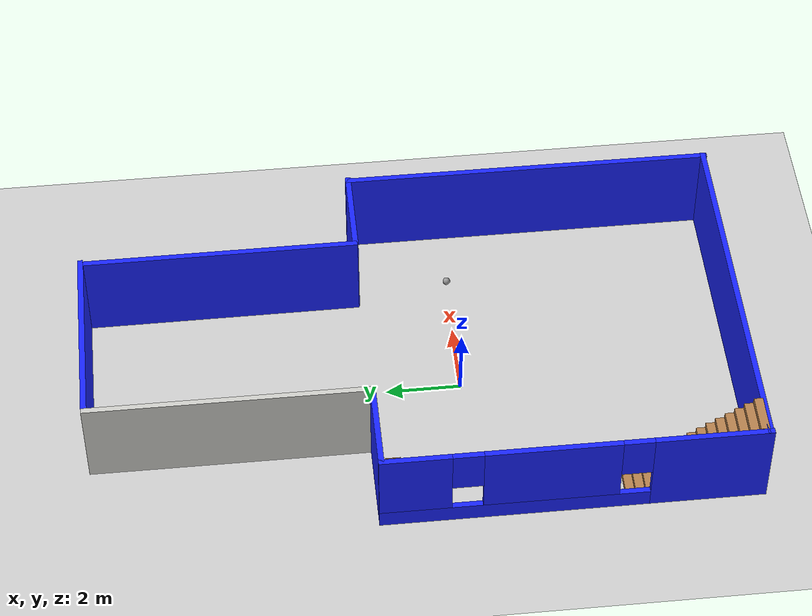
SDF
<sdf version="1.6">
 <world name="default">
  <light name="sun" type="directional">
   <pose>0 0 10 0 -0 0</pose>
   <diffuse>0.8 0.8 0.8 1</diffuse>
   <specular>0.1 0.1 0.1 1</specular>
   <attenuation>
    <range>1000</range>
    <constant>0.9</constant>
    <linear>0.01</linear>
    <quadratic>0.001</quadratic>
   </attenuation>
   <direction>-0.5 0.5 -1</direction>
  </light>
  <model name="ground_plane">
   <static>1</static>
   <link name="link">
    <collision name="collision">
     <geometry><plane><normal>0 0 1</normal><size>100 100</size></plane></geometry>
     <surface><friction><ode><mu>100</mu><mu2>50</mu2></ode></friction></surface>
    </collision>
    <visual name="visual">
     <cast_shadows>0</cast_shadows>
     <geometry><plane><normal>0 0 1</normal><size>100 100</size></plane></geometry>
     <material>
      <script><uri>file://media/materials/scripts/gazebo.material</uri><name>Gazebo/Grey</name></script>
     </material>
    </visual>
   </link>
  </model>
  <gravity>0 0 -9.8</gravity>
  <magnetic_field>6e-06 2.3e-05 -4.2e-05</magnetic_field>
  <atmosphere type="adiabatic"/>
  <physics name="default_physics" default="0" type="ode">
   <max_step_size>0.001</max_step_size>
   <real_time_factor>1</real_time_factor>
   <real_time_update_rate>1000</real_time_update_rate>
  </physics>
  <scene><ambient>0.4 0.4 0.4 1</ambient><background>0.7 0.7 0.7 1</background><shadows>1</shadows></scene>
  <spherical_coordinates>
   <surface_model>EARTH_WGS84</surface_model>
   <latitude_deg>0</latitude_deg>
   <longitude_deg>0</longitude_deg>
   <elevation>0</elevation>
   <heading_deg>0</heading_deg>
  </spherical_coordinates>
  <model name="mySecondHouse_0">
   <link name="Stairs_0">
    <pose>-1.20208 -6.23735 0 0 -0 0</pose>
    <visual name="Stairs_0_Visual_0">
     <pose>-3.16225 4.7318 0.083333 0 -0 0</pose>
     <geometry><box><size>1 0.233333 0.166667</size></box></geometry>
     <material>
      <script><uri>file://media/materials/scripts/gazebo.material</uri><name>Gazebo/Wood</name></script>
      <ambient>1 1 1 1</ambient>
      <diffuse>1 1 1 1</diffuse>
      <specular>0.2 0.2 0.2 1</specular>
      <emissive>0 0 0 1</emissive>
     </material>
    </visual>
    <visual name="Stairs_0_Visual_1">
     <pose>-3.16225 4.49846 0.25 0 -0 0</pose>
     <geometry><box><size>1 0.233333 0.166667</size></box></geometry>
     <material>
      <script><uri>file://media/materials/scripts/gazebo.material</uri><name>Gazebo/Wood</name></script>
      <ambient>1 1 1 1</ambient>
      <diffuse>1 1 1 1</diffuse>
      <specular>0.2 0.2 0.2 1</specular>
      <emissive>0 0 0 1</emissive>
     </material>
    </visual>
    <visual name="Stairs_0_Visual_2">
     <pose>-3.16225 4.26513 0.416667 0 -0 0</pose>
     <geometry><box><size>1 0.233333 0.166667</size></box></geometry>
     <material>
      <script><uri>file://media/materials/scripts/gazebo.material</uri><name>Gazebo/Wood</name></script>
      <ambient>1 1 1 1</ambient>
      <diffuse>1 1 1 1</diffuse>
      <specular>0.2 0.2 0.2 1</specular>
      <emissive>0 0 0 1</emissive>
     </material>
    </visual>
    <visual name="Stairs_0_Visual_3">
     <pose>-3.16225 4.0318 0.583333 0 -0 0</pose>
     <geometry><box><size>1 0.233333 0.166667</size></box></geometry>
     <material>
      <script><uri>file://media/materials/scripts/gazebo.material</uri><name>Gazebo/Wood</name></script>
      <ambient>1 1 1 1</ambient>
      <diffuse>1 1 1 1</diffuse>
      <specular>0.2 0.2 0.2 1</specular>
      <emissive>0 0 0 1</emissive>
     </material>
    </visual>
    <visual name="Stairs_0_Visual_4">
     <pose>-3.16225 3.79846 0.75 0 -0 0</pose>
     <geometry><box><size>1 0.233333 0.166667</size></box></geometry>
     <material>
      <script><uri>file://media/materials/scripts/gazebo.material</uri><name>Gazebo/Wood</name></script>
      <ambient>1 1 1 1</ambient>
      <diffuse>1 1 1 1</diffuse>
      <specular>0.2 0.2 0.2 1</specular>
      <emissive>0 0 0 1</emissive>
     </material>
    </visual>
    <visual name="Stairs_0_Visual_5">
     <pose>-3.16225 3.56513 0.916667 0 -0 0</pose>
     <geometry><box><size>1 0.233333 0.166667</size></box></geometry>
     <material>
      <script><uri>file://media/materials/scripts/gazebo.material</uri><name>Gazebo/Wood</name></script>
      <ambient>1 1 1 1</ambient>
      <diffuse>1 1 1 1</diffuse>
      <specular>0.2 0.2 0.2 1</specular>
      <emissive>0 0 0 1</emissive>
     </material>
    </visual>
    <visual name="Stairs_0_Visual_6">
     <pose>-3.16225 3.3318 1.08333 0 -0 0</pose>
     <geometry><box><size>1 0.233333 0.166667</size></box></geometry>
     <material>
      <script><uri>file://media/materials/scripts/gazebo.material</uri><name>Gazebo/Wood</name></script>
      <ambient>1 1 1 1</ambient>
      <diffuse>1 1 1 1</diffuse>
      <specular>0.2 0.2 0.2 1</specular>
      <emissive>0 0 0 1</emissive>
     </material>
    </visual>
    <visual name="Stairs_0_Visual_7">
     <pose>-3.16225 3.09846 1.25 0 -0 0</pose>
     <geometry><box><size>1 0.233333 0.166667</size></box></geometry>
     <material>
      <script><uri>file://media/materials/scripts/gazebo.material</uri><name>Gazebo/Wood</name></script>
      <ambient>1 1 1 1</ambient>
      <diffuse>1 1 1 1</diffuse>
      <specular>0.2 0.2 0.2 1</specular>
      <emissive>0 0 0 1</emissive>
     </material>
    </visual>
    <visual name="Stairs_0_Visual_8">
     <pose>-3.16225 2.86513 1.41667 0 -0 0</pose>
     <geometry><box><size>1 0.233333 0.166667</size></box></geometry>
     <material>
      <script><uri>file://media/materials/scripts/gazebo.material</uri><name>Gazebo/Wood</name></script>
      <ambient>1 1 1 1</ambient>
      <diffuse>1 1 1 1</diffuse>
      <specular>0.2 0.2 0.2 1</specular>
      <emissive>0 0 0 1</emissive>
     </material>
    </visual>
    <visual name="Stairs_0_Visual_9">
     <pose>-3.16225 2.6318 1.58333 0 -0 0</pose>
     <geometry><box><size>1 0.233333 0.166667</size></box></geometry>
     <material>
      <script><uri>file://media/materials/scripts/gazebo.material</uri><name>Gazebo/Wood</name></script>
      <ambient>1 1 1 1</ambient>
      <diffuse>1 1 1 1</diffuse>
      <specular>0.2 0.2 0.2 1</specular>
      <emissive>0 0 0 1</emissive>
     </material>
    </visual>
    <visual name="Stairs_0_Visual_10">
     <pose>-3.16225 2.39846 1.75 0 -0 0</pose>
     <geometry><box><size>1 0.233333 0.166667</size></box></geometry>
     <material>
      <script><uri>file://media/materials/scripts/gazebo.material</uri><name>Gazebo/Wood</name></script>
      <ambient>1 1 1 1</ambient>
      <diffuse>1 1 1 1</diffuse>
      <specular>0.2 0.2 0.2 1</specular>
      <emissive>0 0 0 1</emissive>
     </material>
    </visual>
    <visual name="Stairs_0_Visual_11">
     <pose>-3.16225 2.16513 1.91667 0 -0 0</pose>
     <geometry><box><size>1 0.233333 0.166667</size></box></geometry>
     <material>
      <script><uri>file://media/materials/scripts/gazebo.material</uri><name>Gazebo/Wood</name></script>
      <ambient>1 1 1 1</ambient>
      <diffuse>1 1 1 1</diffuse>
      <specular>0.2 0.2 0.2 1</specular>
      <emissive>0 0 0 1</emissive>
     </material>
    </visual>
    <visual name="Stairs_0_Visual_12">
     <pose>-3.16225 1.9318 2.08333 0 -0 0</pose>
     <geometry><box><size>1 0.233333 0.166667</size></box></geometry>
     <material>
      <script><uri>file://media/materials/scripts/gazebo.material</uri><name>Gazebo/Wood</name></script>
      <ambient>1 1 1 1</ambient>
      <diffuse>1 1 1 1</diffuse>
      <specular>0.2 0.2 0.2 1</specular>
      <emissive>0 0 0 1</emissive>
     </material>
    </visual>
    <visual name="Stairs_0_Visual_13">
     <pose>-3.16225 1.69846 2.25 0 -0 0</pose>
     <geometry><box><size>1 0.233333 0.166667</size></box></geometry>
     <material>
      <script><uri>file://media/materials/scripts/gazebo.material</uri><name>Gazebo/Wood</name></script>
      <ambient>1 1 1 1</ambient>
      <diffuse>1 1 1 1</diffuse>
      <specular>0.2 0.2 0.2 1</specular>
      <emissive>0 0 0 1</emissive>
     </material>
    </visual>
    <visual name="Stairs_0_Visual_14">
     <pose>-3.16225 1.46513 2.41667 0 -0 0</pose>
     <geometry><box><size>1 0.233333 0.166667</size></box></geometry>
     <material>
      <script><uri>file://media/materials/scripts/gazebo.material</uri><name>Gazebo/Wood</name></script>
      <ambient>1 1 1 1</ambient>
      <diffuse>1 1 1 1</diffuse>
      <specular>0.2 0.2 0.2 1</specular>
      <emissive>0 0 0 1</emissive>
     </material>
    </visual>
    <collision name="Stairs_0_Collision_14">
     <pose>-3.16225 1.46513 2.41667 0 -0 0</pose>
     <geometry><box><size>1 0.233333 0.166667</size></box></geometry>
     <surface>
      <friction>
       <ode><mu>1</mu><mu2>1</mu2><fdir1>0 0 0</fdir1><slip1>0</slip1><slip2>0</slip2></ode>
       <torsional>
        <coefficient>1</coefficient>
        <patch_radius>0</patch_radius>
        <surface_radius>0</surface_radius>
        <use_patch_radius>1</use_patch_radius>
        <ode><slip>0</slip></ode>
       </torsional>
      </friction>
      <bounce><restitution_coefficient>0</restitution_coefficient><threshold>1e+06</threshold></bounce>
      <contact>
       <collide_without_contact>0</collide_without_contact>
       <collide_without_contact_bitmask>1</collide_without_contact_bitmask>
       <collide_bitmask>1</collide_bitmask>
       <ode>
        <soft_cfm>0</soft_cfm>
        <soft_erp>0.2</soft_erp>
        <kp>1e+13</kp>
        <kd>1</kd>
        <max_vel>0.01</max_vel>
        <min_depth>0</min_depth>
       </ode>
       <bullet>
        <split_impulse>1</split_impulse>
        <split_impulse_penetration_threshold>-0.01</split_impulse_penetration_threshold>
        <soft_cfm>0</soft_cfm>
        <soft_erp>0.2</soft_erp>
        <kp>1e+13</kp>
        <kd>1</kd>
       </bullet>
      </contact>
     </surface>
    </collision>
    <collision name="Stairs_0_Collision_0">
     <pose>-3.16225 4.7318 0.083333 0 -0 0</pose>
     <geometry><box><size>1 0.233333 0.166667</size></box></geometry>
     <surface>
      <friction>
       <ode><mu>1</mu><mu2>1</mu2><fdir1>0 0 0</fdir1><slip1>0</slip1><slip2>0</slip2></ode>
       <torsional>
        <coefficient>1</coefficient>
        <patch_radius>0</patch_radius>
        <surface_radius>0</surface_radius>
        <use_patch_radius>1</use_patch_radius>
        <ode><slip>0</slip></ode>
       </torsional>
      </friction>
      <bounce><restitution_coefficient>0</restitution_coefficient><threshold>1e+06</threshold></bounce>
      <contact>
       <collide_without_contact>0</collide_without_contact>
       <collide_without_contact_bitmask>1</collide_without_contact_bitmask>
       <collide_bitmask>1</collide_bitmask>
       <ode>
        <soft_cfm>0</soft_cfm>
        <soft_erp>0.2</soft_erp>
        <kp>1e+13</kp>
        <kd>1</kd>
        <max_vel>0.01</max_vel>
        <min_depth>0</min_depth>
       </ode>
       <bullet>
        <split_impulse>1</split_impulse>
        <split_impulse_penetration_threshold>-0.01</split_impulse_penetration_threshold>
        <soft_cfm>0</soft_cfm>
        <soft_erp>0.2</soft_erp>
        <kp>1e+13</kp>
        <kd>1</kd>
       </bullet>
      </contact>
     </surface>
    </collision>
    <collision name="Stairs_0_Collision_1">
     <pose>-3.16225 4.49846 0.25 0 -0 0</pose>
     <geometry><box><size>1 0.233333 0.166667</size></box></geometry>
     <surface>
      <friction>
       <ode><mu>1</mu><mu2>1</mu2><fdir1>0 0 0</fdir1><slip1>0</slip1><slip2>0</slip2></ode>
       <torsional>
        <coefficient>1</coefficient>
        <patch_radius>0</patch_radius>
        <surface_radius>0</surface_radius>
        <use_patch_radius>1</use_patch_radius>
        <ode><slip>0</slip></ode>
       </torsional>
      </friction>
      <bounce><restitution_coefficient>0</restitution_coefficient><threshold>1e+06</threshold></bounce>
      <contact>
       <collide_without_contact>0</collide_without_contact>
       <collide_without_contact_bitmask>1</collide_without_contact_bitmask>
       <collide_bitmask>1</collide_bitmask>
       <ode>
        <soft_cfm>0</soft_cfm>
        <soft_erp>0.2</soft_erp>
        <kp>1e+13</kp>
        <kd>1</kd>
        <max_vel>0.01</max_vel>
        <min_depth>0</min_depth>
       </ode>
       <bullet>
        <split_impulse>1</split_impulse>
        <split_impulse_penetration_threshold>-0.01</split_impulse_penetration_threshold>
        <soft_cfm>0</soft_cfm>
        <soft_erp>0.2</soft_erp>
        <kp>1e+13</kp>
        <kd>1</kd>
       </bullet>
      </contact>
     </surface>
    </collision>
    <collision name="Stairs_0_Collision_2">
     <pose>-3.16225 4.26513 0.416667 0 -0 0</pose>
     <geometry><box><size>1 0.233333 0.166667</size></box></geometry>
     <surface>
      <friction>
       <ode><mu>1</mu><mu2>1</mu2><fdir1>0 0 0</fdir1><slip1>0</slip1><slip2>0</slip2></ode>
       <torsional>
        <coefficient>1</coefficient>
        <patch_radius>0</patch_radius>
        <surface_radius>0</surface_radius>
        <use_patch_radius>1</use_patch_radius>
        <ode><slip>0</slip></ode>
       </torsional>
      </friction>
      <bounce><restitution_coefficient>0</restitution_coefficient><threshold>1e+06</threshold></bounce>
      <contact>
       <collide_without_contact>0</collide_without_contact>
       <collide_without_contact_bitmask>1</collide_without_contact_bitmask>
       <collide_bitmask>1</collide_bitmask>
       <ode>
        <soft_cfm>0</soft_cfm>
        <soft_erp>0.2</soft_erp>
        <kp>1e+13</kp>
        <kd>1</kd>
        <max_vel>0.01</max_vel>
        <min_depth>0</min_depth>
       </ode>
       <bullet>
        <split_impulse>1</split_impulse>
        <split_impulse_penetration_threshold>-0.01</split_impulse_penetration_threshold>
        <soft_cfm>0</soft_cfm>
        <soft_erp>0.2</soft_erp>
        <kp>1e+13</kp>
        <kd>1</kd>
       </bullet>
      </contact>
     </surface>
    </collision>
    <collision name="Stairs_0_Collision_3">
     <pose>-3.16225 4.0318 0.583333 0 -0 0</pose>
     <geometry><box><size>1 0.233333 0.166667</size></box></geometry>
     <surface>
      <friction>
       <ode><mu>1</mu><mu2>1</mu2><fdir1>0 0 0</fdir1><slip1>0</slip1><slip2>0</slip2></ode>
       <torsional>
        <coefficient>1</coefficient>
        <patch_radius>0</patch_radius>
        <surface_radius>0</surface_radius>
        <use_patch_radius>1</use_patch_radius>
        <ode><slip>0</slip></ode>
       </torsional>
      </friction>
      <bounce><restitution_coefficient>0</restitution_coefficient><threshold>1e+06</threshold></bounce>
      <contact>
       <collide_without_contact>0</collide_without_contact>
       <collide_without_contact_bitmask>1</collide_without_contact_bitmask>
       <collide_bitmask>1</collide_bitmask>
       <ode>
        <soft_cfm>0</soft_cfm>
        <soft_erp>0.2</soft_erp>
        <kp>1e+13</kp>
        <kd>1</kd>
        <max_vel>0.01</max_vel>
        <min_depth>0</min_depth>
       </ode>
       <bullet>
        <split_impulse>1</split_impulse>
        <split_impulse_penetration_threshold>-0.01</split_impulse_penetration_threshold>
        <soft_cfm>0</soft_cfm>
        <soft_erp>0.2</soft_erp>
        <kp>1e+13</kp>
        <kd>1</kd>
       </bullet>
      </contact>
     </surface>
    </collision>
    <collision name="Stairs_0_Collision_5">
     <pose>-3.16225 3.56513 0.916667 0 -0 0</pose>
     <geometry><box><size>1 0.233333 0.166667</size></box></geometry>
     <surface>
      <friction>
       <ode><mu>1</mu><mu2>1</mu2><fdir1>0 0 0</fdir1><slip1>0</slip1><slip2>0</slip2></ode>
       <torsional>
        <coefficient>1</coefficient>
        <patch_radius>0</patch_radius>
        <surface_radius>0</surface_radius>
        <use_patch_radius>1</use_patch_radius>
        <ode><slip>0</slip></ode>
       </torsional>
      </friction>
      <bounce><restitution_coefficient>0</restitution_coefficient><threshold>1e+06</threshold></bounce>
      <contact>
       <collide_without_contact>0</collide_without_contact>
       <collide_without_contact_bitmask>1</collide_without_contact_bitmask>
       <collide_bitmask>1</collide_bitmask>
       <ode>
        <soft_cfm>0</soft_cfm>
        <soft_erp>0.2</soft_erp>
        <kp>1e+13</kp>
        <kd>1</kd>
        <max_vel>0.01</max_vel>
        <min_depth>0</min_depth>
       </ode>
       <bullet>
        <split_impulse>1</split_impulse>
        <split_impulse_penetration_threshold>-0.01</split_impulse_penetration_threshold>
        <soft_cfm>0</soft_cfm>
        <soft_erp>0.2</soft_erp>
        <kp>1e+13</kp>
        <kd>1</kd>
       </bullet>
      </contact>
     </surface>
    </collision>
    <collision name="Stairs_0_Collision_6">
     <pose>-3.16225 3.3318 1.08333 0 -0 0</pose>
     <geometry><box><size>1 0.233333 0.166667</size></box></geometry>
     <surface>
      <friction>
       <ode><mu>1</mu><mu2>1</mu2><fdir1>0 0 0</fdir1><slip1>0</slip1><slip2>0</slip2></ode>
       <torsional>
        <coefficient>1</coefficient>
        <patch_radius>0</patch_radius>
        <surface_radius>0</surface_radius>
        <use_patch_radius>1</use_patch_radius>
        <ode><slip>0</slip></ode>
       </torsional>
      </friction>
      <bounce><restitution_coefficient>0</restitution_coefficient><threshold>1e+06</threshold></bounce>
      <contact>
       <collide_without_contact>0</collide_without_contact>
       <collide_without_contact_bitmask>1</collide_without_contact_bitmask>
       <collide_bitmask>1</collide_bitmask>
       <ode>
        <soft_cfm>0</soft_cfm>
        <soft_erp>0.2</soft_erp>
        <kp>1e+13</kp>
        <kd>1</kd>
        <max_vel>0.01</max_vel>
        <min_depth>0</min_depth>
       </ode>
       <bullet>
        <split_impulse>1</split_impulse>
        <split_impulse_penetration_threshold>-0.01</split_impulse_penetration_threshold>
        <soft_cfm>0</soft_cfm>
        <soft_erp>0.2</soft_erp>
        <kp>1e+13</kp>
        <kd>1</kd>
       </bullet>
      </contact>
     </surface>
    </collision>
    <collision name="Stairs_0_Collision_4">
     <pose>-3.16225 3.79846 0.75 0 -0 0</pose>
     <geometry><box><size>1 0.233333 0.166667</size></box></geometry>
     <surface>
      <friction>
       <ode><mu>1</mu><mu2>1</mu2><fdir1>0 0 0</fdir1><slip1>0</slip1><slip2>0</slip2></ode>
       <torsional>
        <coefficient>1</coefficient>
        <patch_radius>0</patch_radius>
        <surface_radius>0</surface_radius>
        <use_patch_radius>1</use_patch_radius>
        <ode><slip>0</slip></ode>
       </torsional>
      </friction>
      <bounce><restitution_coefficient>0</restitution_coefficient><threshold>1e+06</threshold></bounce>
      <contact>
       <collide_without_contact>0</collide_without_contact>
       <collide_without_contact_bitmask>1</collide_without_contact_bitmask>
       <collide_bitmask>1</collide_bitmask>
       <ode>
        <soft_cfm>0</soft_cfm>
        <soft_erp>0.2</soft_erp>
        <kp>1e+13</kp>
        <kd>1</kd>
        <max_vel>0.01</max_vel>
        <min_depth>0</min_depth>
       </ode>
       <bullet>
        <split_impulse>1</split_impulse>
        <split_impulse_penetration_threshold>-0.01</split_impulse_penetration_threshold>
        <soft_cfm>0</soft_cfm>
        <soft_erp>0.2</soft_erp>
        <kp>1e+13</kp>
        <kd>1</kd>
       </bullet>
      </contact>
     </surface>
    </collision>
    <collision name="Stairs_0_Collision_9">
     <pose>-3.16225 2.6318 1.58333 0 -0 0</pose>
     <geometry><box><size>1 0.233333 0.166667</size></box></geometry>
     <surface>
      <friction>
       <ode><mu>1</mu><mu2>1</mu2><fdir1>0 0 0</fdir1><slip1>0</slip1><slip2>0</slip2></ode>
       <torsional>
        <coefficient>1</coefficient>
        <patch_radius>0</patch_radius>
        <surface_radius>0</surface_radius>
        <use_patch_radius>1</use_patch_radius>
        <ode><slip>0</slip></ode>
       </torsional>
      </friction>
      <bounce><restitution_coefficient>0</restitution_coefficient><threshold>1e+06</threshold></bounce>
      <contact>
       <collide_without_contact>0</collide_without_contact>
       <collide_without_contact_bitmask>1</collide_without_contact_bitmask>
       <collide_bitmask>1</collide_bitmask>
       <ode>
        <soft_cfm>0</soft_cfm>
        <soft_erp>0.2</soft_erp>
        <kp>1e+13</kp>
        <kd>1</kd>
        <max_vel>0.01</max_vel>
        <min_depth>0</min_depth>
       </ode>
       <bullet>
        <split_impulse>1</split_impulse>
        <split_impulse_penetration_threshold>-0.01</split_impulse_penetration_threshold>
        <soft_cfm>0</soft_cfm>
        <soft_erp>0.2</soft_erp>
        <kp>1e+13</kp>
        <kd>1</kd>
       </bullet>
      </contact>
     </surface>
    </collision>
    <collision name="Stairs_0_Collision_7">
     <pose>-3.16225 3.09846 1.25 0 -0 0</pose>
     <geometry><box><size>1 0.233333 0.166667</size></box></geometry>
     <surface>
      <friction>
       <ode><mu>1</mu><mu2>1</mu2><fdir1>0 0 0</fdir1><slip1>0</slip1><slip2>0</slip2></ode>
       <torsional>
        <coefficient>1</coefficient>
        <patch_radius>0</patch_radius>
        <surface_radius>0</surface_radius>
        <use_patch_radius>1</use_patch_radius>
        <ode><slip>0</slip></ode>
       </torsional>
      </friction>
      <bounce><restitution_coefficient>0</restitution_coefficient><threshold>1e+06</threshold></bounce>
      <contact>
       <collide_without_contact>0</collide_without_contact>
       <collide_without_contact_bitmask>1</collide_without_contact_bitmask>
       <collide_bitmask>1</collide_bitmask>
       <ode>
        <soft_cfm>0</soft_cfm>
        <soft_erp>0.2</soft_erp>
        <kp>1e+13</kp>
        <kd>1</kd>
        <max_vel>0.01</max_vel>
        <min_depth>0</min_depth>
       </ode>
       <bullet>
        <split_impulse>1</split_impulse>
        <split_impulse_penetration_threshold>-0.01</split_impulse_penetration_threshold>
        <soft_cfm>0</soft_cfm>
        <soft_erp>0.2</soft_erp>
        <kp>1e+13</kp>
        <kd>1</kd>
       </bullet>
      </contact>
     </surface>
    </collision>
    <collision name="Stairs_0_Collision_8">
     <pose>-3.16225 2.86513 1.41667 0 -0 0</pose>
     <geometry><box><size>1 0.233333 0.166667</size></box></geometry>
     <surface>
      <friction>
       <ode><mu>1</mu><mu2>1</mu2><fdir1>0 0 0</fdir1><slip1>0</slip1><slip2>0</slip2></ode>
       <torsional>
        <coefficient>1</coefficient>
        <patch_radius>0</patch_radius>
        <surface_radius>0</surface_radius>
        <use_patch_radius>1</use_patch_radius>
        <ode><slip>0</slip></ode>
       </torsional>
      </friction>
      <bounce><restitution_coefficient>0</restitution_coefficient><threshold>1e+06</threshold></bounce>
      <contact>
       <collide_without_contact>0</collide_without_contact>
       <collide_without_contact_bitmask>1</collide_without_contact_bitmask>
       <collide_bitmask>1</collide_bitmask>
       <ode>
        <soft_cfm>0</soft_cfm>
        <soft_erp>0.2</soft_erp>
        <kp>1e+13</kp>
        <kd>1</kd>
        <max_vel>0.01</max_vel>
        <min_depth>0</min_depth>
       </ode>
       <bullet>
        <split_impulse>1</split_impulse>
        <split_impulse_penetration_threshold>-0.01</split_impulse_penetration_threshold>
        <soft_cfm>0</soft_cfm>
        <soft_erp>0.2</soft_erp>
        <kp>1e+13</kp>
        <kd>1</kd>
       </bullet>
      </contact>
     </surface>
    </collision>
    <collision name="Stairs_0_Collision_10">
     <pose>-3.16225 2.39846 1.75 0 -0 0</pose>
     <geometry><box><size>1 0.233333 0.166667</size></box></geometry>
     <surface>
      <friction>
       <ode><mu>1</mu><mu2>1</mu2><fdir1>0 0 0</fdir1><slip1>0</slip1><slip2>0</slip2></ode>
       <torsional>
        <coefficient>1</coefficient>
        <patch_radius>0</patch_radius>
        <surface_radius>0</surface_radius>
        <use_patch_radius>1</use_patch_radius>
        <ode><slip>0</slip></ode>
       </torsional>
      </friction>
      <bounce><restitution_coefficient>0</restitution_coefficient><threshold>1e+06</threshold></bounce>
      <contact>
       <collide_without_contact>0</collide_without_contact>
       <collide_without_contact_bitmask>1</collide_without_contact_bitmask>
       <collide_bitmask>1</collide_bitmask>
       <ode>
        <soft_cfm>0</soft_cfm>
        <soft_erp>0.2</soft_erp>
        <kp>1e+13</kp>
        <kd>1</kd>
        <max_vel>0.01</max_vel>
        <min_depth>0</min_depth>
       </ode>
       <bullet>
        <split_impulse>1</split_impulse>
        <split_impulse_penetration_threshold>-0.01</split_impulse_penetration_threshold>
        <soft_cfm>0</soft_cfm>
        <soft_erp>0.2</soft_erp>
        <kp>1e+13</kp>
        <kd>1</kd>
       </bullet>
      </contact>
     </surface>
    </collision>
    <collision name="Stairs_0_Collision_11">
     <pose>-3.16225 2.16513 1.91667 0 -0 0</pose>
     <geometry><box><size>1 0.233333 0.166667</size></box></geometry>
     <surface>
      <friction>
       <ode><mu>1</mu><mu2>1</mu2><fdir1>0 0 0</fdir1><slip1>0</slip1><slip2>0</slip2></ode>
       <torsional>
        <coefficient>1</coefficient>
        <patch_radius>0</patch_radius>
        <surface_radius>0</surface_radius>
        <use_patch_radius>1</use_patch_radius>
        <ode><slip>0</slip></ode>
       </torsional>
      </friction>
      <bounce><restitution_coefficient>0</restitution_coefficient><threshold>1e+06</threshold></bounce>
      <contact>
       <collide_without_contact>0</collide_without_contact>
       <collide_without_contact_bitmask>1</collide_without_contact_bitmask>
       <collide_bitmask>1</collide_bitmask>
       <ode>
        <soft_cfm>0</soft_cfm>
        <soft_erp>0.2</soft_erp>
        <kp>1e+13</kp>
        <kd>1</kd>
        <max_vel>0.01</max_vel>
        <min_depth>0</min_depth>
       </ode>
       <bullet>
        <split_impulse>1</split_impulse>
        <split_impulse_penetration_threshold>-0.01</split_impulse_penetration_threshold>
        <soft_cfm>0</soft_cfm>
        <soft_erp>0.2</soft_erp>
        <kp>1e+13</kp>
        <kd>1</kd>
       </bullet>
      </contact>
     </surface>
    </collision>
    <collision name="Stairs_0_Collision_12">
     <pose>-3.16225 1.9318 2.08333 0 -0 0</pose>
     <geometry><box><size>1 0.233333 0.166667</size></box></geometry>
     <surface>
      <friction>
       <ode><mu>1</mu><mu2>1</mu2><fdir1>0 0 0</fdir1><slip1>0</slip1><slip2>0</slip2></ode>
       <torsional>
        <coefficient>1</coefficient>
        <patch_radius>0</patch_radius>
        <surface_radius>0</surface_radius>
        <use_patch_radius>1</use_patch_radius>
        <ode><slip>0</slip></ode>
       </torsional>
      </friction>
      <bounce><restitution_coefficient>0</restitution_coefficient><threshold>1e+06</threshold></bounce>
      <contact>
       <collide_without_contact>0</collide_without_contact>
       <collide_without_contact_bitmask>1</collide_without_contact_bitmask>
       <collide_bitmask>1</collide_bitmask>
       <ode>
        <soft_cfm>0</soft_cfm>
        <soft_erp>0.2</soft_erp>
        <kp>1e+13</kp>
        <kd>1</kd>
        <max_vel>0.01</max_vel>
        <min_depth>0</min_depth>
       </ode>
       <bullet>
        <split_impulse>1</split_impulse>
        <split_impulse_penetration_threshold>-0.01</split_impulse_penetration_threshold>
        <soft_cfm>0</soft_cfm>
        <soft_erp>0.2</soft_erp>
        <kp>1e+13</kp>
        <kd>1</kd>
       </bullet>
      </contact>
     </surface>
    </collision>
    <collision name="Stairs_0_Collision_13">
     <pose>-3.16225 1.69846 2.25 0 -0 0</pose>
     <geometry><box><size>1 0.233333 0.166667</size></box></geometry>
     <surface>
      <friction>
       <ode><mu>1</mu><mu2>1</mu2><fdir1>0 0 0</fdir1><slip1>0</slip1><slip2>0</slip2></ode>
       <torsional>
        <coefficient>1</coefficient>
        <patch_radius>0</patch_radius>
        <surface_radius>0</surface_radius>
        <use_patch_radius>1</use_patch_radius>
        <ode><slip>0</slip></ode>
       </torsional>
      </friction>
      <bounce><restitution_coefficient>0</restitution_coefficient><threshold>1e+06</threshold></bounce>
      <contact>
       <collide_without_contact>0</collide_without_contact>
       <collide_without_contact_bitmask>1</collide_without_contact_bitmask>
       <collide_bitmask>1</collide_bitmask>
       <ode>
        <soft_cfm>0</soft_cfm>
        <soft_erp>0.2</soft_erp>
        <kp>1e+13</kp>
        <kd>1</kd>
        <max_vel>0.01</max_vel>
        <min_depth>0</min_depth>
       </ode>
       <bullet>
        <split_impulse>1</split_impulse>
        <split_impulse_penetration_threshold>-0.01</split_impulse_penetration_threshold>
        <soft_cfm>0</soft_cfm>
        <soft_erp>0.2</soft_erp>
        <kp>1e+13</kp>
        <kd>1</kd>
       </bullet>
      </contact>
     </surface>
    </collision>
   </link>
   <link name="Wall_26">
    <pose>-3.71974 4.925 0 0 -0 0</pose>
    <visual name="Wall_26_Visual">
     <pose>0 0 1.25 0 -0 0</pose>
     <geometry><box><size>2.5 0.15 2.5</size></box></geometry>
     <material>
      <script><uri>file://media/materials/scripts/gazebo.material</uri><name>Gazebo/Grey</name></script>
      <ambient>0.0980392 0.141176 1 1</ambient>
      <diffuse>0.7 0.7 0.7 1</diffuse>
      <specular>0.01 0.01 0.01 1</specular>
      <emissive>0 0 0 1</emissive>
     </material>
    </visual>
    <collision name="Wall_26_Collision">
     <pose>0 0 1.25 0 -0 0</pose>
     <geometry><box><size>2.5 0.15 2.5</size></box></geometry>
     <surface>
      <friction>
       <ode><mu>1</mu><mu2>1</mu2><fdir1>0 0 0</fdir1><slip1>0</slip1><slip2>0</slip2></ode>
       <torsional>
        <coefficient>1</coefficient>
        <patch_radius>0</patch_radius>
        <surface_radius>0</surface_radius>
        <use_patch_radius>1</use_patch_radius>
        <ode><slip>0</slip></ode>
       </torsional>
      </friction>
      <bounce><restitution_coefficient>0</restitution_coefficient><threshold>1e+06</threshold></bounce>
      <contact>
       <collide_without_contact>0</collide_without_contact>
       <collide_without_contact_bitmask>1</collide_without_contact_bitmask>
       <collide_bitmask>1</collide_bitmask>
       <ode>
        <soft_cfm>0</soft_cfm>
        <soft_erp>0.2</soft_erp>
        <kp>1e+13</kp>
        <kd>1</kd>
        <max_vel>0.01</max_vel>
        <min_depth>0</min_depth>
       </ode>
       <bullet>
        <split_impulse>1</split_impulse>
        <split_impulse_penetration_threshold>-0.01</split_impulse_penetration_threshold>
        <soft_cfm>0</soft_cfm>
        <soft_erp>0.2</soft_erp>
        <kp>1e+13</kp>
        <kd>1</kd>
       </bullet>
      </contact>
     </surface>
    </collision>
   </link>
   <link name="Wall_27">
    <pose>-2.54213 8.59143 0 0 0 -1.57151</pose>
    <inertial>
     <inertia><ixx>nan</ixx><ixy>0</ixy><ixz>0</ixz><iyy>nan</iyy><iyz>0</iyz><izz>nan</izz></inertia>
     <mass>0</mass>
    </inertial>
    <visual name="Wall_27_Visual">
     <pose>0 0 1.25 0 -0 0</pose>
     <geometry><box><size>7.48003 0.15 2.5</size></box></geometry>
     <material>
      <script><uri>file://media/materials/scripts/gazebo.material</uri><name>Gazebo/CeilingTiled</name></script>
      <ambient>0.0980392 0.141176 1 1</ambient>
      <diffuse>1 1 1 1</diffuse>
      <specular>0 0 0 1</specular>
      <emissive>0 0 0 1</emissive>
     </material>
    </visual>
    <collision name="Wall_27_Collision">
     <pose>0 0 1.25 0 -0 0</pose>
     <geometry><box><size>7.48003 0.15 2.5</size></box></geometry>
     <surface>
      <friction>
       <ode><mu>1</mu><mu2>1</mu2><fdir1>0 0 0</fdir1><slip1>0</slip1><slip2>0</slip2></ode>
       <torsional>
        <coefficient>1</coefficient>
        <patch_radius>0</patch_radius>
        <surface_radius>0</surface_radius>
        <use_patch_radius>1</use_patch_radius>
        <ode><slip>0</slip></ode>
       </torsional>
      </friction>
      <bounce><restitution_coefficient>0</restitution_coefficient><threshold>1e+06</threshold></bounce>
      <contact>
       <collide_without_contact>0</collide_without_contact>
       <collide_without_contact_bitmask>1</collide_without_contact_bitmask>
       <collide_bitmask>1</collide_bitmask>
       <ode>
        <soft_cfm>0</soft_cfm>
        <soft_erp>0.2</soft_erp>
        <kp>1e+13</kp>
        <kd>1</kd>
        <max_vel>0.01</max_vel>
        <min_depth>0</min_depth>
       </ode>
       <bullet>
        <split_impulse>1</split_impulse>
        <split_impulse_penetration_threshold>-0.01</split_impulse_penetration_threshold>
        <soft_cfm>0</soft_cfm>
        <soft_erp>0.2</soft_erp>
        <kp>1e+13</kp>
        <kd>1</kd>
       </bullet>
      </contact>
     </surface>
    </collision>
   </link>
   <link name="Wall_28">
    <pose>0.035567 12.2589 0 0 -0 0</pose>
    <visual name="Wall_28_Visual">
     <pose>0 0 1.25 0 -0 0</pose>
     <geometry><box><size>5.25 0.15 2.5</size></box></geometry>
     <material>
      <script><uri>file://media/materials/scripts/gazebo.material</uri><name>Gazebo/Grey</name></script>
      <ambient>0.0980392 0.141176 1 1</ambient>
      <diffuse>0.7 0.7 0.7 1</diffuse>
      <specular>0.01 0.01 0.01 1</specular>
      <emissive>0 0 0 1</emissive>
     </material>
    </visual>
    <collision name="Wall_28_Collision">
     <pose>0 0 1.25 0 -0 0</pose>
     <geometry><box><size>5.25 0.15 2.5</size></box></geometry>
     <surface>
      <friction>
       <ode><mu>1</mu><mu2>1</mu2><fdir1>0 0 0</fdir1><slip1>0</slip1><slip2>0</slip2></ode>
       <torsional>
        <coefficient>1</coefficient>
        <patch_radius>0</patch_radius>
        <surface_radius>0</surface_radius>
        <use_patch_radius>1</use_patch_radius>
        <ode><slip>0</slip></ode>
       </torsional>
      </friction>
      <bounce><restitution_coefficient>0</restitution_coefficient><threshold>1e+06</threshold></bounce>
      <contact>
       <collide_without_contact>0</collide_without_contact>
       <collide_without_contact_bitmask>1</collide_without_contact_bitmask>
       <collide_bitmask>1</collide_bitmask>
       <ode>
        <soft_cfm>0</soft_cfm>
        <soft_erp>0.2</soft_erp>
        <kp>1e+13</kp>
        <kd>1</kd>
        <max_vel>0.01</max_vel>
        <min_depth>0</min_depth>
       </ode>
       <bullet>
        <split_impulse>1</split_impulse>
        <split_impulse_penetration_threshold>-0.01</split_impulse_penetration_threshold>
        <soft_cfm>0</soft_cfm>
        <soft_erp>0.2</soft_erp>
        <kp>1e+13</kp>
        <kd>1</kd>
       </bullet>
      </contact>
     </surface>
    </collision>
   </link>
   <link name="Wall_29">
    <pose>2.54684 8.53962 0 0 -0 1.57417</pose>
    <inertial>
     <inertia><ixx>nan</ixx><ixy>0</ixy><ixz>0</ixz><iyy>nan</iyy><iyz>0</iyz><izz>nan</izz></inertia>
     <mass>0</mass>
    </inertial>
    <visual name="Wall_29_Visual">
     <pose>0 0 1.25 0 -0 0</pose>
     <geometry><box><size>7.33027 0.15 2.5</size></box></geometry>
     <material>
      <script><uri>file://media/materials/scripts/gazebo.material</uri><name>Gazebo/Grey</name></script>
      <ambient>0.0980392 0.141176 1 1</ambient>
      <diffuse>0.7 0.7 0.7 1</diffuse>
      <specular>0.01 0.01 0.01 1</specular>
      <emissive>0 0 0 1</emissive>
     </material>
    </visual>
    <collision name="Wall_29_Collision">
     <pose>0 0 1.25 0 -0 0</pose>
     <geometry><box><size>7.33027 0.15 2.5</size></box></geometry>
     <surface>
      <friction>
       <ode><mu>1</mu><mu2>1</mu2><fdir1>0 0 0</fdir1><slip1>0</slip1><slip2>0</slip2></ode>
       <torsional>
        <coefficient>1</coefficient>
        <patch_radius>0</patch_radius>
        <surface_radius>0</surface_radius>
        <use_patch_radius>1</use_patch_radius>
        <ode><slip>0</slip></ode>
       </torsional>
      </friction>
      <bounce><restitution_coefficient>0</restitution_coefficient><threshold>1e+06</threshold></bounce>
      <contact>
       <collide_without_contact>0</collide_without_contact>
       <collide_without_contact_bitmask>1</collide_without_contact_bitmask>
       <collide_bitmask>1</collide_bitmask>
       <ode>
        <soft_cfm>0</soft_cfm>
        <soft_erp>0.2</soft_erp>
        <kp>1e+13</kp>
        <kd>1</kd>
        <max_vel>0.01</max_vel>
        <min_depth>0</min_depth>
       </ode>
       <bullet>
        <split_impulse>1</split_impulse>
        <split_impulse_penetration_threshold>-0.01</split_impulse_penetration_threshold>
        <soft_cfm>0</soft_cfm>
        <soft_erp>0.2</soft_erp>
        <kp>1e+13</kp>
        <kd>1</kd>
       </bullet>
      </contact>
     </surface>
    </collision>
   </link>
   <link name="Wall_30">
    <pose>3.77003 4.925 0 0 -0 0</pose>
    <visual name="Wall_30_Visual">
     <pose>0 0 1.25 0 -0 0</pose>
     <geometry><box><size>2.5 0.15 2.5</size></box></geometry>
     <material>
      <script><uri>file://media/materials/scripts/gazebo.material</uri><name>Gazebo/Grey</name></script>
      <ambient>0.0980392 0.141176 1 1</ambient>
      <diffuse>0.7 0.7 0.7 1</diffuse>
      <specular>0.01 0.01 0.01 1</specular>
      <emissive>0 0 0 1</emissive>
     </material>
    </visual>
    <collision name="Wall_30_Collision">
     <pose>0 0 1.25 0 -0 0</pose>
     <geometry><box><size>2.5 0.15 2.5</size></box></geometry>
     <surface>
      <friction>
       <ode><mu>1</mu><mu2>1</mu2><fdir1>0 0 0</fdir1><slip1>0</slip1><slip2>0</slip2></ode>
       <torsional>
        <coefficient>1</coefficient>
        <patch_radius>0</patch_radius>
        <surface_radius>0</surface_radius>
        <use_patch_radius>1</use_patch_radius>
        <ode><slip>0</slip></ode>
       </torsional>
      </friction>
      <bounce><restitution_coefficient>0</restitution_coefficient><threshold>1e+06</threshold></bounce>
      <contact>
       <collide_without_contact>0</collide_without_contact>
       <collide_without_contact_bitmask>1</collide_without_contact_bitmask>
       <collide_bitmask>1</collide_bitmask>
       <ode>
        <soft_cfm>0</soft_cfm>
        <soft_erp>0.2</soft_erp>
        <kp>1e+13</kp>
        <kd>1</kd>
        <max_vel>0.01</max_vel>
        <min_depth>0</min_depth>
       </ode>
       <bullet>
        <split_impulse>1</split_impulse>
        <split_impulse_penetration_threshold>-0.01</split_impulse_penetration_threshold>
        <soft_cfm>0</soft_cfm>
        <soft_erp>0.2</soft_erp>
        <kp>1e+13</kp>
        <kd>1</kd>
       </bullet>
      </contact>
     </surface>
    </collision>
   </link>
   <link name="Wall_31">
    <pose>4.90715 0 0 0 0 -1.57118</pose>
    <visual name="Wall_31_Visual">
     <pose>0 0 1.25 0 -0 0</pose>
     <geometry><box><size>10.0006 0.15 2.5</size></box></geometry>
     <material>
      <script><uri>file://media/materials/scripts/gazebo.material</uri><name>Gazebo/Grey</name></script>
      <ambient>0.0980392 0.141176 1 1</ambient>
      <diffuse>0.7 0.7 0.7 1</diffuse>
      <specular>0.01 0.01 0.01 1</specular>
      <emissive>0 0 0 1</emissive>
     </material>
    </visual>
    <collision name="Wall_31_Collision">
     <pose>0 0 1.25 0 -0 0</pose>
     <geometry><box><size>10.0006 0.15 2.5</size></box></geometry>
     <surface>
      <friction>
       <ode><mu>1</mu><mu2>1</mu2><fdir1>0 0 0</fdir1><slip1>0</slip1><slip2>0</slip2></ode>
       <torsional>
        <coefficient>1</coefficient>
        <patch_radius>0</patch_radius>
        <surface_radius>0</surface_radius>
        <use_patch_radius>1</use_patch_radius>
        <ode><slip>0</slip></ode>
       </torsional>
      </friction>
      <bounce><restitution_coefficient>0</restitution_coefficient><threshold>1e+06</threshold></bounce>
      <contact>
       <collide_without_contact>0</collide_without_contact>
       <collide_without_contact_bitmask>1</collide_without_contact_bitmask>
       <collide_bitmask>1</collide_bitmask>
       <ode>
        <soft_cfm>0</soft_cfm>
        <soft_erp>0.2</soft_erp>
        <kp>1e+13</kp>
        <kd>1</kd>
        <max_vel>0.01</max_vel>
        <min_depth>0</min_depth>
       </ode>
       <bullet>
        <split_impulse>1</split_impulse>
        <split_impulse_penetration_threshold>-0.01</split_impulse_penetration_threshold>
        <soft_cfm>0</soft_cfm>
        <soft_erp>0.2</soft_erp>
        <kp>1e+13</kp>
        <kd>1</kd>
       </bullet>
      </contact>
     </surface>
    </collision>
   </link>
   <link name="Wall_32">
    <pose>-0.007443 -4.89795 0 0 -0 3.14156</pose>
    <visual name="Wall_32_Visual">
     <pose>0 0 1.25 0 -0 0</pose>
     <geometry><box><size>10 0.15 2.5</size></box></geometry>
     <material>
      <script><uri>file://media/materials/scripts/gazebo.material</uri><name>Gazebo/Grey</name></script>
      <ambient>0.0980392 0.141176 1 1</ambient>
      <diffuse>0.7 0.7 0.7 1</diffuse>
      <specular>0.01 0.01 0.01 1</specular>
      <emissive>0 0 0 1</emissive>
     </material>
    </visual>
    <collision name="Wall_32_Collision">
     <pose>0 0 1.25 0 -0 0</pose>
     <geometry><box><size>10 0.15 2.5</size></box></geometry>
     <surface>
      <friction>
       <ode><mu>1</mu><mu2>1</mu2><fdir1>0 0 0</fdir1><slip1>0</slip1><slip2>0</slip2></ode>
       <torsional>
        <coefficient>1</coefficient>
        <patch_radius>0</patch_radius>
        <surface_radius>0</surface_radius>
        <use_patch_radius>1</use_patch_radius>
        <ode><slip>0</slip></ode>
       </torsional>
      </friction>
      <bounce><restitution_coefficient>0</restitution_coefficient><threshold>1e+06</threshold></bounce>
      <contact>
       <collide_without_contact>0</collide_without_contact>
       <collide_without_contact_bitmask>1</collide_without_contact_bitmask>
       <collide_bitmask>1</collide_bitmask>
       <ode>
        <soft_cfm>0</soft_cfm>
        <soft_erp>0.2</soft_erp>
        <kp>1e+13</kp>
        <kd>1</kd>
        <max_vel>0.01</max_vel>
        <min_depth>0</min_depth>
       </ode>
       <bullet>
        <split_impulse>1</split_impulse>
        <split_impulse_penetration_threshold>-0.01</split_impulse_penetration_threshold>
        <soft_cfm>0</soft_cfm>
        <soft_erp>0.2</soft_erp>
        <kp>1e+13</kp>
        <kd>1</kd>
       </bullet>
      </contact>
     </surface>
    </collision>
   </link>
   <link name="Wall_33">
    <pose>-4.94503 0.000313 0 0 -0 1.5708</pose>
    <visual name="Wall_33_Visual_0">
     <pose>-3.48148 0 1.25 0 -0 0</pose>
     <geometry><box><size>3.03703 0.15 2.5</size></box></geometry>
     <material>
      <script><uri>file://media/materials/scripts/gazebo.material</uri><name>Gazebo/Grey</name></script>
      <ambient>0.0980392 0.141176 1 1</ambient>
      <diffuse>0.7 0.7 0.7 1</diffuse>
      <specular>0.01 0.01 0.01 1</specular>
      <emissive>0 0 0 1</emissive>
     </material>
    </visual>
    <visual name="Wall_33_Visual_1">
     <pose>1.51852 0 0.25 0 -0 0</pose>
     <geometry><box><size>6.96297 0.15 0.5</size></box></geometry>
     <material>
      <script><uri>file://media/materials/scripts/gazebo.material</uri><name>Gazebo/Grey</name></script>
      <ambient>0.0980392 0.141176 1 1</ambient>
      <diffuse>0.7 0.7 0.7 1</diffuse>
      <specular>0.01 0.01 0.01 1</specular>
      <emissive>0 0 0 1</emissive>
     </material>
    </visual>
    <visual name="Wall_33_Visual_2">
     <pose>0.590138 0 1.5 0 -0 0</pose>
     <geometry><box><size>3.50621 0.15 2</size></box></geometry>
     <material>
      <script><uri>file://media/materials/scripts/gazebo.material</uri><name>Gazebo/Grey</name></script>
      <ambient>0.0980392 0.141176 1 1</ambient>
      <diffuse>0.7 0.7 0.7 1</diffuse>
      <specular>0.01 0.01 0.01 1</specular>
      <emissive>0 0 0 1</emissive>
     </material>
    </visual>
    <visual name="Wall_33_Visual_3">
     <pose>4.07162 0 1.5 0 -0 0</pose>
     <geometry><box><size>1.85676 0.15 2</size></box></geometry>
     <material>
      <script><uri>file://media/materials/scripts/gazebo.material</uri><name>Gazebo/Grey</name></script>
      <ambient>0.0980392 0.141176 1 1</ambient>
      <diffuse>0.7 0.7 0.7 1</diffuse>
      <specular>0.01 0.01 0.01 1</specular>
      <emissive>0 0 0 1</emissive>
     </material>
    </visual>
    <visual name="Wall_33_Visual_4">
     <pose>-1.56297 0 1.9 0 -0 0</pose>
     <geometry><box><size>0.8 0.15 1.2</size></box></geometry>
     <material>
      <script><uri>file://media/materials/scripts/gazebo.material</uri><name>Gazebo/Grey</name></script>
      <ambient>0.0980392 0.141176 1 1</ambient>
      <diffuse>0.7 0.7 0.7 1</diffuse>
      <specular>0.01 0.01 0.01 1</specular>
      <emissive>0 0 0 1</emissive>
     </material>
    </visual>
    <visual name="Wall_33_Visual_5">
     <pose>2.74324 0 1.9 0 -0 0</pose>
     <geometry><box><size>0.8 0.15 1.2</size></box></geometry>
     <material>
      <script><uri>file://media/materials/scripts/gazebo.material</uri><name>Gazebo/Grey</name></script>
      <ambient>0.0980392 0.141176 1 1</ambient>
      <diffuse>0.7 0.7 0.7 1</diffuse>
      <specular>0.01 0.01 0.01 1</specular>
      <emissive>0 0 0 1</emissive>
     </material>
    </visual>
    <collision name="Wall_33_Collision_5">
     <pose>2.74324 0 1.9 0 -0 0</pose>
     <geometry><box><size>0.8 0.15 1.2</size></box></geometry>
     <surface>
      <friction>
       <ode><mu>1</mu><mu2>1</mu2><fdir1>0 0 0</fdir1><slip1>0</slip1><slip2>0</slip2></ode>
       <torsional>
        <coefficient>1</coefficient>
        <patch_radius>0</patch_radius>
        <surface_radius>0</surface_radius>
        <use_patch_radius>1</use_patch_radius>
        <ode><slip>0</slip></ode>
       </torsional>
      </friction>
      <bounce><restitution_coefficient>0</restitution_coefficient><threshold>1e+06</threshold></bounce>
      <contact>
       <collide_without_contact>0</collide_without_contact>
       <collide_without_contact_bitmask>1</collide_without_contact_bitmask>
       <collide_bitmask>1</collide_bitmask>
       <ode>
        <soft_cfm>0</soft_cfm>
        <soft_erp>0.2</soft_erp>
        <kp>1e+13</kp>
        <kd>1</kd>
        <max_vel>0.01</max_vel>
        <min_depth>0</min_depth>
       </ode>
       <bullet>
        <split_impulse>1</split_impulse>
        <split_impulse_penetration_threshold>-0.01</split_impulse_penetration_threshold>
        <soft_cfm>0</soft_cfm>
        <soft_erp>0.2</soft_erp>
        <kp>1e+13</kp>
        <kd>1</kd>
       </bullet>
      </contact>
     </surface>
    </collision>
    <collision name="Wall_33_Collision_0">
     <pose>-3.48148 0 1.25 0 -0 0</pose>
     <geometry><box><size>3.03703 0.15 2.5</size></box></geometry>
     <surface>
      <friction>
       <ode><mu>1</mu><mu2>1</mu2><fdir1>0 0 0</fdir1><slip1>0</slip1><slip2>0</slip2></ode>
       <torsional>
        <coefficient>1</coefficient>
        <patch_radius>0</patch_radius>
        <surface_radius>0</surface_radius>
        <use_patch_radius>1</use_patch_radius>
        <ode><slip>0</slip></ode>
       </torsional>
      </friction>
      <bounce><restitution_coefficient>0</restitution_coefficient><threshold>1e+06</threshold></bounce>
      <contact>
       <collide_without_contact>0</collide_without_contact>
       <collide_without_contact_bitmask>1</collide_without_contact_bitmask>
       <collide_bitmask>1</collide_bitmask>
       <ode>
        <soft_cfm>0</soft_cfm>
        <soft_erp>0.2</soft_erp>
        <kp>1e+13</kp>
        <kd>1</kd>
        <max_vel>0.01</max_vel>
        <min_depth>0</min_depth>
       </ode>
       <bullet>
        <split_impulse>1</split_impulse>
        <split_impulse_penetration_threshold>-0.01</split_impulse_penetration_threshold>
        <soft_cfm>0</soft_cfm>
        <soft_erp>0.2</soft_erp>
        <kp>1e+13</kp>
        <kd>1</kd>
       </bullet>
      </contact>
     </surface>
    </collision>
    <collision name="Wall_33_Collision_1">
     <pose>1.51852 0 0.25 0 -0 0</pose>
     <geometry><box><size>6.96297 0.15 0.5</size></box></geometry>
     <surface>
      <friction>
       <ode><mu>1</mu><mu2>1</mu2><fdir1>0 0 0</fdir1><slip1>0</slip1><slip2>0</slip2></ode>
       <torsional>
        <coefficient>1</coefficient>
        <patch_radius>0</patch_radius>
        <surface_radius>0</surface_radius>
        <use_patch_radius>1</use_patch_radius>
        <ode><slip>0</slip></ode>
       </torsional>
      </friction>
      <bounce><restitution_coefficient>0</restitution_coefficient><threshold>1e+06</threshold></bounce>
      <contact>
       <collide_without_contact>0</collide_without_contact>
       <collide_without_contact_bitmask>1</collide_without_contact_bitmask>
       <collide_bitmask>1</collide_bitmask>
       <ode>
        <soft_cfm>0</soft_cfm>
        <soft_erp>0.2</soft_erp>
        <kp>1e+13</kp>
        <kd>1</kd>
        <max_vel>0.01</max_vel>
        <min_depth>0</min_depth>
       </ode>
       <bullet>
        <split_impulse>1</split_impulse>
        <split_impulse_penetration_threshold>-0.01</split_impulse_penetration_threshold>
        <soft_cfm>0</soft_cfm>
        <soft_erp>0.2</soft_erp>
        <kp>1e+13</kp>
        <kd>1</kd>
       </bullet>
      </contact>
     </surface>
    </collision>
    <collision name="Wall_33_Collision_2">
     <pose>0.590138 0 1.5 0 -0 0</pose>
     <geometry><box><size>3.50621 0.15 2</size></box></geometry>
     <surface>
      <friction>
       <ode><mu>1</mu><mu2>1</mu2><fdir1>0 0 0</fdir1><slip1>0</slip1><slip2>0</slip2></ode>
       <torsional>
        <coefficient>1</coefficient>
        <patch_radius>0</patch_radius>
        <surface_radius>0</surface_radius>
        <use_patch_radius>1</use_patch_radius>
        <ode><slip>0</slip></ode>
       </torsional>
      </friction>
      <bounce><restitution_coefficient>0</restitution_coefficient><threshold>1e+06</threshold></bounce>
      <contact>
       <collide_without_contact>0</collide_without_contact>
       <collide_without_contact_bitmask>1</collide_without_contact_bitmask>
       <collide_bitmask>1</collide_bitmask>
       <ode>
        <soft_cfm>0</soft_cfm>
        <soft_erp>0.2</soft_erp>
        <kp>1e+13</kp>
        <kd>1</kd>
        <max_vel>0.01</max_vel>
        <min_depth>0</min_depth>
       </ode>
       <bullet>
        <split_impulse>1</split_impulse>
        <split_impulse_penetration_threshold>-0.01</split_impulse_penetration_threshold>
        <soft_cfm>0</soft_cfm>
        <soft_erp>0.2</soft_erp>
        <kp>1e+13</kp>
        <kd>1</kd>
       </bullet>
      </contact>
     </surface>
    </collision>
    <collision name="Wall_33_Collision_3">
     <pose>4.07162 0 1.5 0 -0 0</pose>
     <geometry><box><size>1.85676 0.15 2</size></box></geometry>
     <surface>
      <friction>
       <ode><mu>1</mu><mu2>1</mu2><fdir1>0 0 0</fdir1><slip1>0</slip1><slip2>0</slip2></ode>
       <torsional>
        <coefficient>1</coefficient>
        <patch_radius>0</patch_radius>
        <surface_radius>0</surface_radius>
        <use_patch_radius>1</use_patch_radius>
        <ode><slip>0</slip></ode>
       </torsional>
      </friction>
      <bounce><restitution_coefficient>0</restitution_coefficient><threshold>1e+06</threshold></bounce>
      <contact>
       <collide_without_contact>0</collide_without_contact>
       <collide_without_contact_bitmask>1</collide_without_contact_bitmask>
       <collide_bitmask>1</collide_bitmask>
       <ode>
        <soft_cfm>0</soft_cfm>
        <soft_erp>0.2</soft_erp>
        <kp>1e+13</kp>
        <kd>1</kd>
        <max_vel>0.01</max_vel>
        <min_depth>0</min_depth>
       </ode>
       <bullet>
        <split_impulse>1</split_impulse>
        <split_impulse_penetration_threshold>-0.01</split_impulse_penetration_threshold>
        <soft_cfm>0</soft_cfm>
        <soft_erp>0.2</soft_erp>
        <kp>1e+13</kp>
        <kd>1</kd>
       </bullet>
      </contact>
     </surface>
    </collision>
    <collision name="Wall_33_Collision_4">
     <pose>-1.56297 0 1.9 0 -0 0</pose>
     <geometry><box><size>0.8 0.15 1.2</size></box></geometry>
     <surface>
      <friction>
       <ode><mu>1</mu><mu2>1</mu2><fdir1>0 0 0</fdir1><slip1>0</slip1><slip2>0</slip2></ode>
       <torsional>
        <coefficient>1</coefficient>
        <patch_radius>0</patch_radius>
        <surface_radius>0</surface_radius>
        <use_patch_radius>1</use_patch_radius>
        <ode><slip>0</slip></ode>
       </torsional>
      </friction>
      <bounce><restitution_coefficient>0</restitution_coefficient><threshold>1e+06</threshold></bounce>
      <contact>
       <collide_without_contact>0</collide_without_contact>
       <collide_without_contact_bitmask>1</collide_without_contact_bitmask>
       <collide_bitmask>1</collide_bitmask>
       <ode>
        <soft_cfm>0</soft_cfm>
        <soft_erp>0.2</soft_erp>
        <kp>1e+13</kp>
        <kd>1</kd>
        <max_vel>0.01</max_vel>
        <min_depth>0</min_depth>
       </ode>
       <bullet>
        <split_impulse>1</split_impulse>
        <split_impulse_penetration_threshold>-0.01</split_impulse_penetration_threshold>
        <soft_cfm>0</soft_cfm>
        <soft_erp>0.2</soft_erp>
        <kp>1e+13</kp>
        <kd>1</kd>
       </bullet>
      </contact>
     </surface>
    </collision>
   </link>
   <static>1</static>
   <pose>0.629614 -2.42197 0 0 -0 0</pose>
  </model>
  <model name="bookshelf">
   <static>1</static>
   <link name="link">
    <inertial><mass>1</mass></inertial>
    <collision name="back">
     <pose>0 0.005 0.6 0 -0 0</pose>
     <geometry><box><size>0.9 0.01 1.2</size></box></geometry>
    </collision>
    <visual name="visual1">
     <pose>0 0.005 0.6 0 -0 0</pose>
     <geometry><box><size>0.9 0.01 1.2</size></box></geometry>
     <material>
      <script><uri>file://media/materials/scripts/gazebo.material</uri><name>Gazebo/Wood</name></script>
     </material>
    </visual>
    <collision name="left_side">
     <pose>0.45 -0.195 0.6 0 -0 0</pose>
     <geometry><box><size>0.02 0.4 1.2</size></box></geometry>
    </collision>
    <visual name="visual2">
     <pose>0.45 -0.195 0.6 0 -0 0</pose>
     <geometry><box><size>0.02 0.4 1.2</size></box></geometry>
     <material>
      <script><uri>file://media/materials/scripts/gazebo.material</uri><name>Gazebo/Wood</name></script>
     </material>
    </visual>
    <collision name="right_side">
     <pose>-0.45 -0.195 0.6 0 -0 0</pose>
     <geometry><box><size>0.02 0.4 1.2</size></box></geometry>
    </collision>
    <visual name="visual3">
     <pose>-0.45 -0.195 0.6 0 -0 0</pose>
     <geometry><box><size>0.02 0.4 1.2</size></box></geometry>
     <material>
      <script><uri>file://media/materials/scripts/gazebo.material</uri><name>Gazebo/Wood</name></script>
     </material>
    </visual>
    <collision name="bottom">
     <pose>0 -0.195 0.03 0 -0 0</pose>
     <geometry><box><size>0.88 0.4 0.06</size></box></geometry>
    </collision>
    <visual name="visual4">
     <pose>0 -0.195 0.03 0 -0 0</pose>
     <geometry><box><size>0.88 0.4 0.06</size></box></geometry>
     <material>
      <script><uri>file://media/materials/scripts/gazebo.material</uri><name>Gazebo/Wood</name></script>
     </material>
    </visual>
    <collision name="top">
     <pose>0 -0.195 1.19 0 -0 0</pose>
     <geometry><box><size>0.88 0.4 0.02</size></box></geometry>
    </collision>
    <visual name="visual5">
     <pose>0 -0.195 1.19 0 -0 0</pose>
     <geometry><box><size>0.88 0.4 0.02</size></box></geometry>
     <material>
      <script><uri>file://media/materials/scripts/gazebo.material</uri><name>Gazebo/Wood</name></script>
     </material>
    </visual>
    <collision name="low_shelf">
     <pose>0 -0.195 0.43 0 -0 0</pose>
     <geometry><box><size>0.88 0.4 0.02</size></box></geometry>
    </collision>
    <visual name="visual6">
     <pose>0 -0.195 0.43 0 -0 0</pose>
     <geometry><box><size>0.88 0.4 0.02</size></box></geometry>
     <material>
      <script><uri>file://media/materials/scripts/gazebo.material</uri><name>Gazebo/Wood</name></script>
     </material>
    </visual>
    <collision name="high_shelf">
     <pose>0 -0.195 0.8 0 -0 0</pose>
     <geometry><box><size>0.88 0.4 0.02</size></box></geometry>
    </collision>
    <visual name="visual7">
     <pose>0 -0.195 0.8 0 -0 0</pose>
     <geometry><box><size>0.88 0.4 0.02</size></box></geometry>
     <material>
      <script><uri>file://media/materials/scripts/gazebo.material</uri><name>Gazebo/Wood</name></script>
     </material>
    </visual>
   </link>
   <pose>-3.64415 2.30799 0 0 -0 0</pose>
  </model>
  <model name="whiteBall">
   <link name="link_0">
    <inertial>
     <mass>1</mass>
     <inertia><ixx>0.1</ixx><ixy>0</ixy><ixz>0</ixz><iyy>0.1</iyy><iyz>0</iyz><izz>0.1</izz></inertia>
    </inertial>
    <visual name="ModelPreview_5::link_0::visual_1">
     <geometry><sphere><radius>0.1</radius></sphere></geometry>
     <material>
      <lighting>1</lighting>
      <script><uri>file://media/materials/scripts/gazebo.material</uri><name>Gazebo/Grey</name></script>
      <ambient>0.3 0.3 0.3 1</ambient>
      <diffuse>0.7 0.7 0.7 1</diffuse>
      <specular>0.01 0.01 0.01 1</specular>
      <emissive>0 0 0 1</emissive>
      <shader type="vertex"><normal_map>__default__</normal_map></shader>
     </material>
    </visual>
    <visual name="visual">
     <geometry><sphere><radius>0.1</radius></sphere></geometry>
     <material>
      <lighting>1</lighting>
      <script><uri>file://media/materials/scripts/gazebo.material</uri><name>Gazebo/White</name></script>
      <ambient>0.9 0.9 0.9 1</ambient>
      <diffuse>0.7 0.7 0.7 1</diffuse>
      <specular>0.01 0.01 0.01 1</specular>
      <emissive>0.3 0.3 0.3 1</emissive>
      <shader type="vertex"><normal_map>__default__</normal_map></shader>
     </material>
    </visual>
    <collision name="collision">
     <geometry><sphere><radius>0.1</radius></sphere></geometry>
     <surface>
      <friction>
       <ode><mu>1</mu><mu2>1</mu2><fdir1>0 0 0</fdir1><slip1>0</slip1><slip2>0</slip2></ode>
       <torsional>
        <coefficient>1</coefficient>
        <patch_radius>0</patch_radius>
        <surface_radius>0</surface_radius>
        <use_patch_radius>1</use_patch_radius>
        <ode><slip>0</slip></ode>
       </torsional>
      </friction>
      <bounce><restitution_coefficient>0</restitution_coefficient><threshold>1e+06</threshold></bounce>
      <contact>
       <collide_without_contact>0</collide_without_contact>
       <collide_without_contact_bitmask>1</collide_without_contact_bitmask>
       <collide_bitmask>1</collide_bitmask>
       <ode>
        <soft_cfm>0</soft_cfm>
        <soft_erp>0.2</soft_erp>
        <kp>1e+13</kp>
        <kd>1</kd>
        <max_vel>0.01</max_vel>
        <min_depth>0</min_depth>
       </ode>
       <bullet>
        <split_impulse>1</split_impulse>
        <split_impulse_penetration_threshold>-0.01</split_impulse_penetration_threshold>
        <soft_cfm>0</soft_cfm>
        <soft_erp>0.2</soft_erp>
        <kp>1e+13</kp>
        <kd>1</kd>
       </bullet>
      </contact>
     </surface>
    </collision>
   </link>
   <static>0</static>
   <pose>3.74288 -0.028295 0.1 0 -0 0</pose>
  </model>
 </world>
</sdf>
